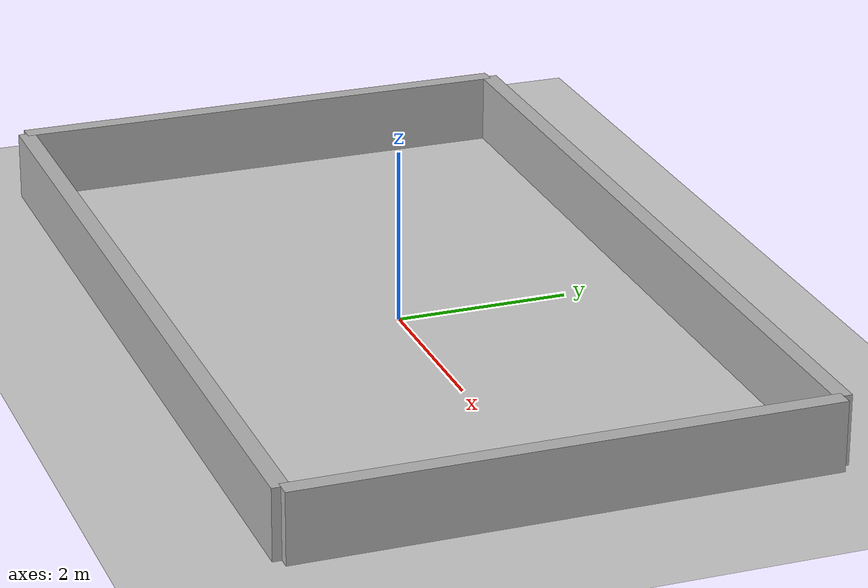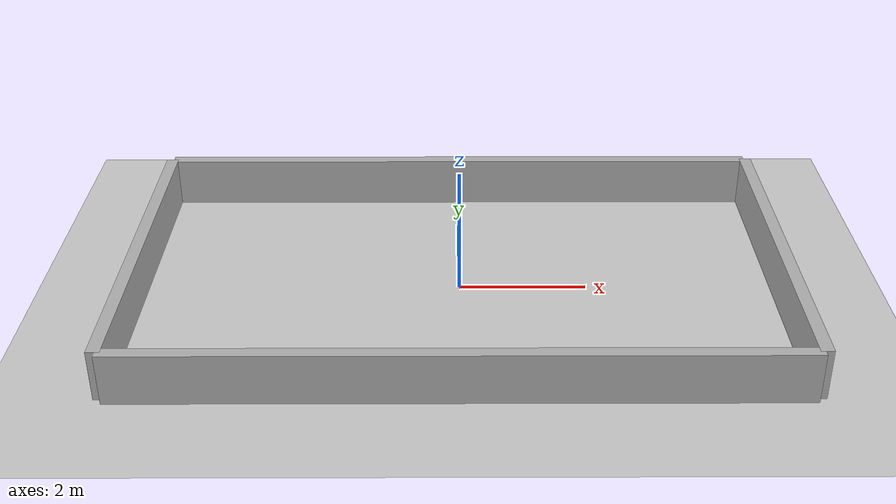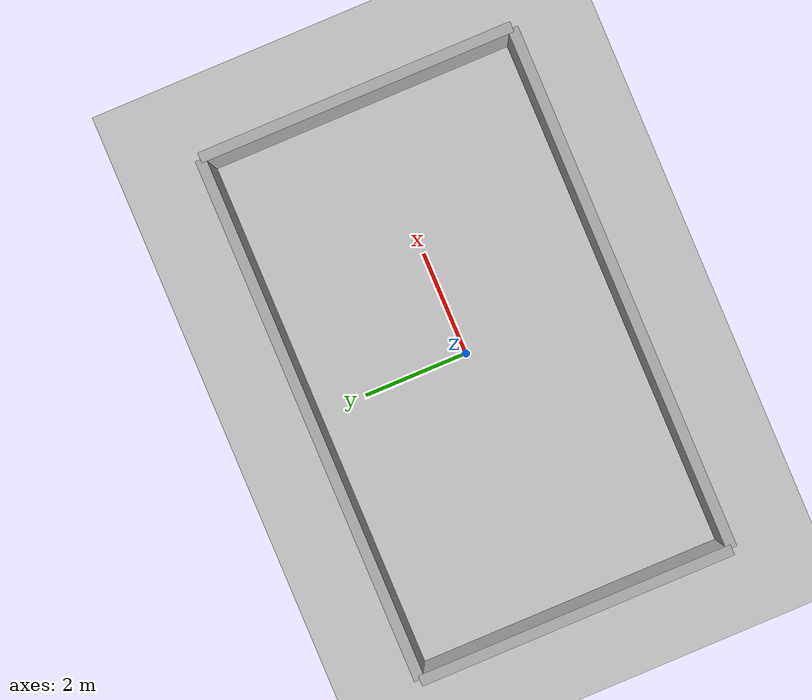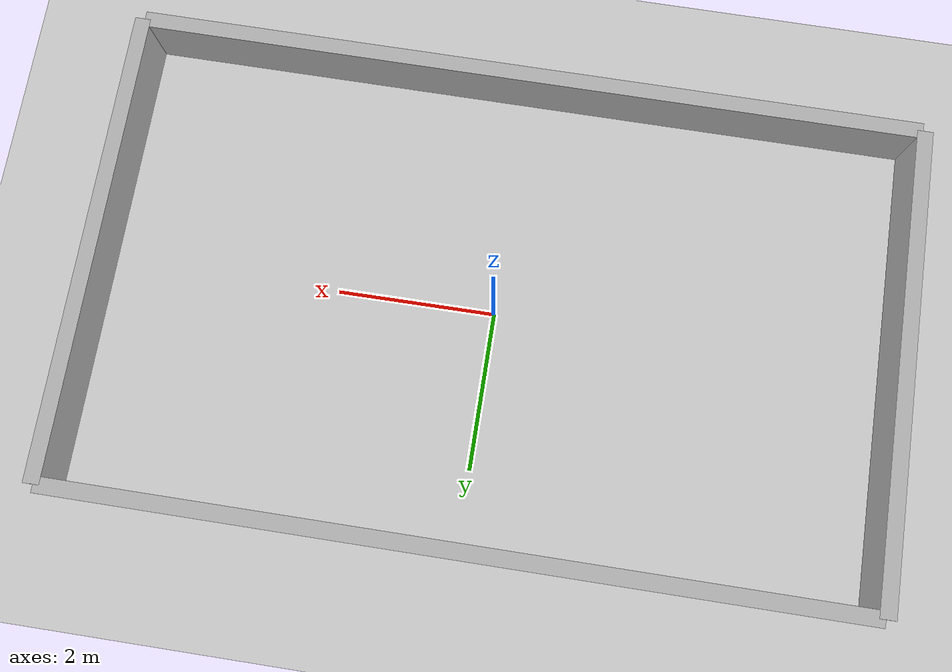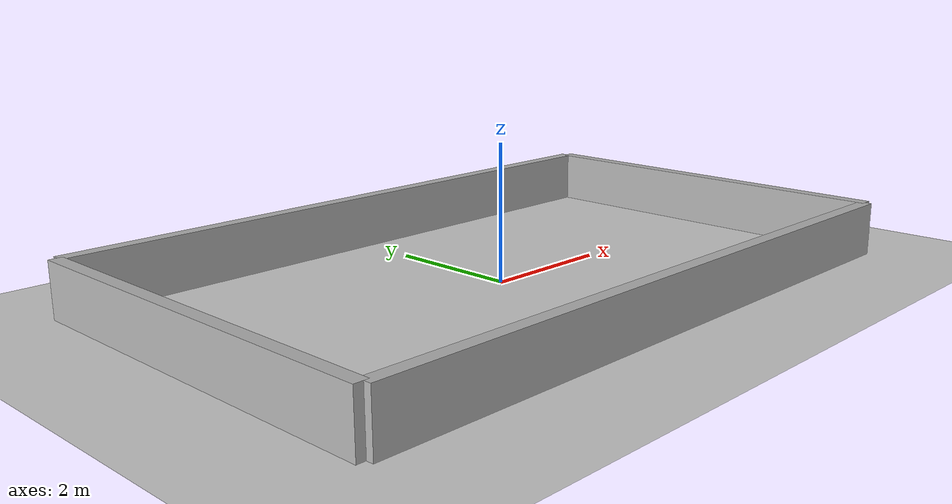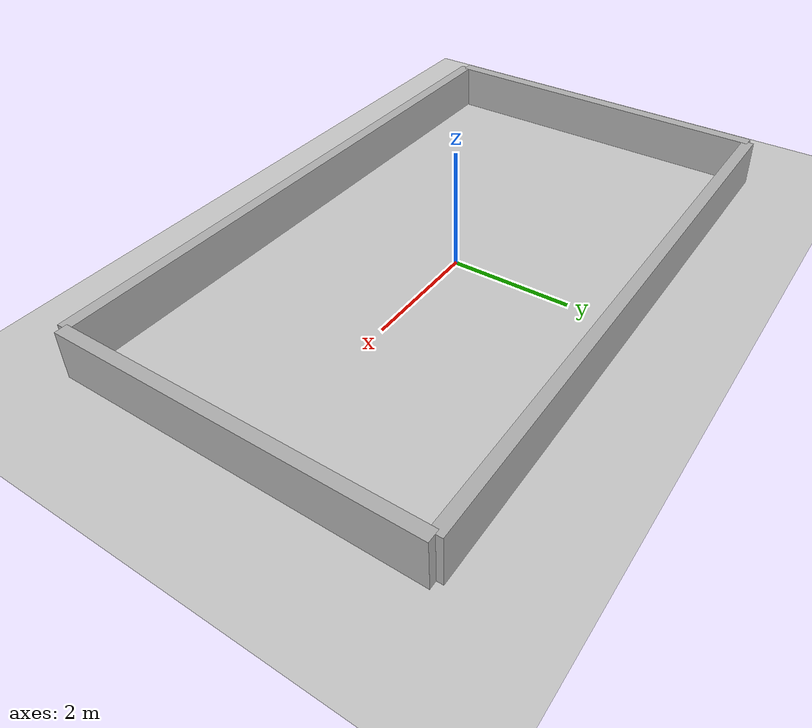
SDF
<sdf version="1.9">
 <world name="empty">
  <physics name="1ms" type="ignored">
   <max_step_size>0.001</max_step_size>
   <real_time_factor>1</real_time_factor>
   <real_time_update_rate>1000</real_time_update_rate>
  </physics>
  <plugin name="gz::sim::systems::Physics" filename="ignition-gazebo-physics-system"/>
  <plugin name="gz::sim::systems::UserCommands" filename="ignition-gazebo-user-commands-system"/>
  <plugin name="gz::sim::systems::SceneBroadcaster" filename="ignition-gazebo-scene-broadcaster-system"/>
  <plugin name="gz::sim::systems::Contact" filename="ignition-gazebo-contact-system"/>
  <gravity>0 0 -9.8</gravity>
  <magnetic_field>6e-06 2.3e-05 -4.2e-05</magnetic_field>
  <atmosphere type="adiabatic"/>
  <scene><ambient>0.4 0.4 0.4 1</ambient><background>0.7 0.7 0.7 1</background><shadows>true</shadows></scene>
  <model name="ground_plane">
   <static>true</static>
   <link name="link">
    <collision name="collision">
     <geometry><plane><normal>0 0 1</normal><size>100 100</size></plane></geometry>
     <surface><friction><ode><mu>1.0</mu><mu2>100.0</mu2></ode></friction></surface>
    </collision>
    <visual name="visual">
     <geometry><plane><normal>0 0 1</normal><size>100 100</size></plane></geometry>
     <material>
      <ambient>0.8 0.8 0.8 1</ambient>
      <diffuse>0.8 0.8 0.8 1</diffuse>
      <specular>0.8 0.8 0.8 1</specular>
     </material>
    </visual>
    <inertial>
     <mass>1</mass>
     <inertia><ixx>1</ixx><ixy>0</ixy><ixz>0</ixz><iyy>1</iyy><iyz>0</iyz><izz>1</izz></inertia>
    </inertial>
   </link>
  </model>
  <model name="box">
   <pose>5.02624 0 0.400083 0 0.000839 2e-06</pose>
   <link name="box_link">
    <inertial>
     <inertia><ixx>0.16666</ixx><ixy>0</ixy><ixz>0</ixz><iyy>0.16666</iyy><iyz>0</iyz><izz>0.16666</izz></inertia>
     <mass>1</mass>
    </inertial>
    <collision name="box_collision"><geometry><box><size>0.2 6 0.8</size></box></geometry></collision>
    <visual name="box_visual">
     <geometry><box><size>0.2 6 0.8</size></box></geometry>
     <material>
      <ambient>0.3 0.3 0.3 1</ambient>
      <diffuse>0.7 0.7 0.7 1</diffuse>
      <specular>1 1 1 1</specular>
     </material>
    </visual>
   </link>
   <static>false</static>
  </model>
  <model name="box_0">
   <pose>-6e-06 -3 0.4 -1e-06 -0 -1e-06</pose>
   <link name="box_link">
    <inertial>
     <inertia><ixx>0.16666</ixx><ixy>0</ixy><ixz>0</ixz><iyy>0.16666</iyy><iyz>0</iyz><izz>0.16666</izz></inertia>
     <mass>1</mass>
    </inertial>
    <collision name="box_collision"><geometry><box><size>10 0.2 0.8</size></box></geometry></collision>
    <visual name="box_visual">
     <geometry><box><size>10 0.2 0.8</size></box></geometry>
     <material>
      <ambient>0.3 0.3 0.3 1</ambient>
      <diffuse>0.7 0.7 0.7 1</diffuse>
      <specular>1 1 1 1</specular>
     </material>
    </visual>
   </link>
   <static>false</static>
  </model>
  <model name="box_1">
   <pose>-5.02599 0 0.400017 -0 -0.000169 1e-06</pose>
   <link name="box_link">
    <inertial>
     <inertia><ixx>0.16666</ixx><ixy>0</ixy><ixz>0</ixz><iyy>0.16666</iyy><iyz>0</iyz><izz>0.16666</izz></inertia>
     <mass>1</mass>
    </inertial>
    <collision name="box_collision"><geometry><box><size>0.2 6 0.8</size></box></geometry></collision>
    <visual name="box_visual">
     <geometry><box><size>0.2 6 0.8</size></box></geometry>
     <material>
      <ambient>0.3 0.3 0.3 1</ambient>
      <diffuse>0.7 0.7 0.7 1</diffuse>
      <specular>1 1 1 1</specular>
     </material>
    </visual>
   </link>
   <static>false</static>
  </model>
  <model name="box_2">
   <pose>-2.5e-05 2.99999 0.4 -2e-06 0 -2e-06</pose>
   <link name="box_link">
    <inertial>
     <inertia><ixx>0.16666</ixx><ixy>0</ixy><ixz>0</ixz><iyy>0.16666</iyy><iyz>0</iyz><izz>0.16666</izz></inertia>
     <mass>1</mass>
    </inertial>
    <collision name="box_collision"><geometry><box><size>10 0.2 0.8</size></box></geometry></collision>
    <visual name="box_visual">
     <geometry><box><size>10 0.2 0.8</size></box></geometry>
     <material>
      <ambient>0.3 0.3 0.3 1</ambient>
      <diffuse>0.7 0.7 0.7 1</diffuse>
      <specular>1 1 1 1</specular>
     </material>
    </visual>
   </link>
   <static>false</static>
  </model>
  <light name="sun" type="directional">
   <pose>0 0 10 0 -0 0</pose>
   <intensity>1</intensity>
   <direction>-0.5 0.1 -0.9</direction>
   <diffuse>0.8 0.8 0.8 1</diffuse>
   <specular>0.2 0.2 0.2 1</specular>
   <attenuation>
    <range>1000</range>
    <linear>0.01</linear>
    <constant>0.90000000000000002</constant>
    <quadratic>0.001</quadratic>
   </attenuation>
   <spot><inner_angle>0</inner_angle><outer_angle>0</outer_angle><falloff>0</falloff></spot>
  </light>
 </world>
</sdf>
